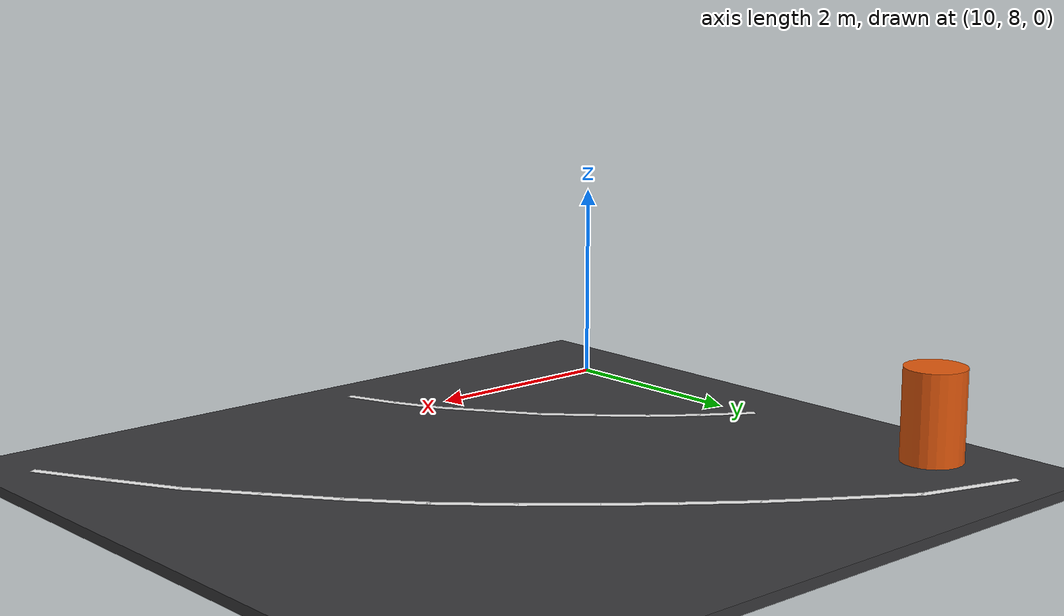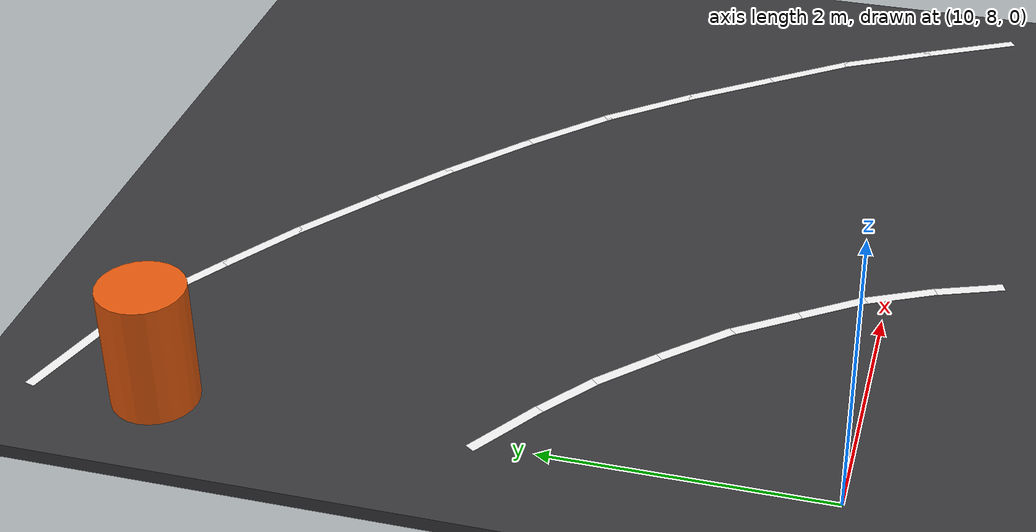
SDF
<sdf version="1.9">
 <world name="igvc_course">
  <model name="ground">
   <static>true</static>
   <pose>1.1853 1.2982 -0.05 0 0 0</pose>
   <link name="link">
    <collision name="collision">
     <geometry><box><size>39.54 33.62 0.1</size></box></geometry>
     <surface><friction><ode><mu>1.0</mu><mu2>1.0</mu2></ode></friction></surface>
    </collision>
    <visual name="visual">
     <geometry><box><size>39.54 33.62 0.1</size></box></geometry>
     <material><ambient>0.18 0.18 0.19 1</ambient><diffuse>0.22 0.22 0.23 1</diffuse></material>
    </visual>
   </link>
  </model>
  <model name="lane_left_46">
   <static>true</static>
   <pose>10.3671 13.3681 0.0025 0 0 -0.29174</pose>
   <link name="link">
    <visual name="visual">
     <geometry><box><size>1.0528 0.0762 0.0050</size></box></geometry>
     <material>
      <ambient>0.95 0.95 0.95 1</ambient>
      <diffuse>0.95 0.95 0.95 1</diffuse>
      <specular>0.1 0.1 0.1 1</specular>
      <emissive>0.55 0.55 0.55 1</emissive>
     </material>
    </visual>
   </link>
  </model>
  <model name="lane_left_47">
   <static>true</static>
   <pose>11.1969 13.0019 0.0025 0 0 -0.56959</pose>
   <link name="link">
    <visual name="visual">
     <geometry><box><size>0.8550 0.0762 0.0050</size></box></geometry>
     <material>
      <ambient>0.95 0.95 0.95 1</ambient>
      <diffuse>0.95 0.95 0.95 1</diffuse>
      <specular>0.1 0.1 0.1 1</specular>
      <emissive>0.55 0.55 0.55 1</emissive>
     </material>
    </visual>
   </link>
  </model>
  <model name="lane_left_48">
   <static>true</static>
   <pose>11.8137 12.5993 0.0025 0 0 -0.58913</pose>
   <link name="link">
    <visual name="visual">
     <geometry><box><size>0.6945 0.0762 0.0050</size></box></geometry>
     <material>
      <ambient>0.95 0.95 0.95 1</ambient>
      <diffuse>0.95 0.95 0.95 1</diffuse>
      <specular>0.1 0.1 0.1 1</specular>
      <emissive>0.55 0.55 0.55 1</emissive>
     </material>
    </visual>
   </link>
  </model>
  <model name="lane_left_49">
   <static>true</static>
   <pose>12.3634 12.2053 0.0025 0 0 -0.65287</pose>
   <link name="link">
    <visual name="visual">
     <geometry><box><size>0.7351 0.0762 0.0050</size></box></geometry>
     <material>
      <ambient>0.95 0.95 0.95 1</ambient>
      <diffuse>0.95 0.95 0.95 1</diffuse>
      <specular>0.1 0.1 0.1 1</specular>
      <emissive>0.55 0.55 0.55 1</emissive>
     </material>
    </visual>
   </link>
  </model>
  <model name="lane_left_50">
   <static>true</static>
   <pose>12.9036 11.7823 0.0025 0 0 -0.67625</pose>
   <link name="link">
    <visual name="visual">
     <geometry><box><size>0.7133 0.0762 0.0050</size></box></geometry>
     <material>
      <ambient>0.95 0.95 0.95 1</ambient>
      <diffuse>0.95 0.95 0.95 1</diffuse>
      <specular>0.1 0.1 0.1 1</specular>
      <emissive>0.55 0.55 0.55 1</emissive>
     </material>
    </visual>
   </link>
  </model>
  <model name="lane_left_51">
   <static>true</static>
   <pose>13.4496 11.3233 0.0025 0 0 -0.71932</pose>
   <link name="link">
    <visual name="visual">
     <geometry><box><size>0.7900 0.0762 0.0050</size></box></geometry>
     <material>
      <ambient>0.95 0.95 0.95 1</ambient>
      <diffuse>0.95 0.95 0.95 1</diffuse>
      <specular>0.1 0.1 0.1 1</specular>
      <emissive>0.55 0.55 0.55 1</emissive>
     </material>
    </visual>
   </link>
  </model>
  <model name="lane_left_52">
   <static>true</static>
   <pose>14.0043 10.8108 0.0025 0 0 -0.77221</pose>
   <link name="link">
    <visual name="visual">
     <geometry><box><size>0.7972 0.0762 0.0050</size></box></geometry>
     <material>
      <ambient>0.95 0.95 0.95 1</ambient>
      <diffuse>0.95 0.95 0.95 1</diffuse>
      <specular>0.1 0.1 0.1 1</specular>
      <emissive>0.55 0.55 0.55 1</emissive>
     </material>
    </visual>
   </link>
  </model>
  <model name="lane_left_53">
   <static>true</static>
   <pose>14.5223 10.2517 0.0025 0 0 -0.87440</pose>
   <link name="link">
    <visual name="visual">
     <geometry><box><size>0.8052 0.0762 0.0050</size></box></geometry>
     <material>
      <ambient>0.95 0.95 0.95 1</ambient>
      <diffuse>0.95 0.95 0.95 1</diffuse>
      <specular>0.1 0.1 0.1 1</specular>
      <emissive>0.55 0.55 0.55 1</emissive>
     </material>
    </visual>
   </link>
  </model>
  <model name="lane_left_54">
   <static>true</static>
   <pose>14.9909 9.6593 0.0025 0 0 -0.92940</pose>
   <link name="link">
    <visual name="visual">
     <geometry><box><size>0.7822 0.0762 0.0050</size></box></geometry>
     <material>
      <ambient>0.95 0.95 0.95 1</ambient>
      <diffuse>0.95 0.95 0.95 1</diffuse>
      <specular>0.1 0.1 0.1 1</specular>
      <emissive>0.55 0.55 0.55 1</emissive>
     </material>
    </visual>
   </link>
  </model>
  <model name="lane_left_55">
   <static>true</static>
   <pose>15.4342 9.0626 0.0025 0 0 -0.93430</pose>
   <link name="link">
    <visual name="visual">
     <geometry><box><size>0.7806 0.0762 0.0050</size></box></geometry>
     <material>
      <ambient>0.95 0.95 0.95 1</ambient>
      <diffuse>0.95 0.95 0.95 1</diffuse>
      <specular>0.1 0.1 0.1 1</specular>
      <emissive>0.55 0.55 0.55 1</emissive>
     </material>
    </visual>
   </link>
  </model>
  <model name="lane_left_56">
   <static>true</static>
   <pose>15.8338 8.4374 0.0025 0 0 -1.06964</pose>
   <link name="link">
    <visual name="visual">
     <geometry><box><size>0.7831 0.0762 0.0050</size></box></geometry>
     <material>
      <ambient>0.95 0.95 0.95 1</ambient>
      <diffuse>0.95 0.95 0.95 1</diffuse>
      <specular>0.1 0.1 0.1 1</specular>
      <emissive>0.55 0.55 0.55 1</emissive>
     </material>
    </visual>
   </link>
  </model>
  <model name="lane_left_57">
   <static>true</static>
   <pose>16.1950 7.7631 0.0025 0 0 -1.08808</pose>
   <link name="link">
    <visual name="visual">
     <geometry><box><size>0.8231 0.0762 0.0050</size></box></geometry>
     <material>
      <ambient>0.95 0.95 0.95 1</ambient>
      <diffuse>0.95 0.95 0.95 1</diffuse>
      <specular>0.1 0.1 0.1 1</specular>
      <emissive>0.55 0.55 0.55 1</emissive>
     </material>
    </visual>
   </link>
  </model>
  <model name="lane_right_48">
   <static>true</static>
   <pose>10.1996 10.2607 0.0025 0 0 -0.58669</pose>
   <link name="link">
    <visual name="visual">
     <geometry><box><size>0.6028 0.0762 0.0050</size></box></geometry>
     <material>
      <ambient>0.95 0.95 0.95 1</ambient>
      <diffuse>0.95 0.95 0.95 1</diffuse>
      <specular>0.1 0.1 0.1 1</specular>
      <emissive>0.55 0.55 0.55 1</emissive>
     </material>
    </visual>
   </link>
  </model>
  <model name="lane_right_49">
   <static>true</static>
   <pose>10.6377 9.9492 0.0025 0 0 -0.65282</pose>
   <link name="link">
    <visual name="visual">
     <geometry><box><size>0.5491 0.0762 0.0050</size></box></geometry>
     <material>
      <ambient>0.95 0.95 0.95 1</ambient>
      <diffuse>0.95 0.95 0.95 1</diffuse>
      <specular>0.1 0.1 0.1 1</specular>
      <emissive>0.55 0.55 0.55 1</emissive>
     </material>
    </visual>
   </link>
  </model>
  <model name="lane_right_50">
   <static>true</static>
   <pose>11.0289 9.6102 0.0025 0 0 -0.77347</pose>
   <link name="link">
    <visual name="visual">
     <geometry><box><size>0.5644 0.0762 0.0050</size></box></geometry>
     <material>
      <ambient>0.95 0.95 0.95 1</ambient>
      <diffuse>0.95 0.95 0.95 1</diffuse>
      <specular>0.1 0.1 0.1 1</specular>
      <emissive>0.55 0.55 0.55 1</emissive>
     </material>
    </visual>
   </link>
  </model>
  <model name="lane_right_51">
   <static>true</static>
   <pose>11.4141 9.2225 0.0025 0 0 -0.80256</pose>
   <link name="link">
    <visual name="visual">
     <geometry><box><size>0.6051 0.0762 0.0050</size></box></geometry>
     <material>
      <ambient>0.95 0.95 0.95 1</ambient>
      <diffuse>0.95 0.95 0.95 1</diffuse>
      <specular>0.1 0.1 0.1 1</specular>
      <emissive>0.55 0.55 0.55 1</emissive>
     </material>
    </visual>
   </link>
  </model>
  <model name="lane_right_52">
   <static>true</static>
   <pose>11.7626 8.8036 0.0025 0 0 -0.95707</pose>
   <link name="link">
    <visual name="visual">
     <geometry><box><size>0.5640 0.0762 0.0050</size></box></geometry>
     <material>
      <ambient>0.95 0.95 0.95 1</ambient>
      <diffuse>0.95 0.95 0.95 1</diffuse>
      <specular>0.1 0.1 0.1 1</specular>
      <emissive>0.55 0.55 0.55 1</emissive>
     </material>
    </visual>
   </link>
  </model>
  <model name="lane_right_53">
   <static>true</static>
   <pose>12.0631 8.3750 0.0025 0 0 -0.96181</pose>
   <link name="link">
    <visual name="visual">
     <geometry><box><size>0.5593 0.0762 0.0050</size></box></geometry>
     <material>
      <ambient>0.95 0.95 0.95 1</ambient>
      <diffuse>0.95 0.95 0.95 1</diffuse>
      <specular>0.1 0.1 0.1 1</specular>
      <emissive>0.55 0.55 0.55 1</emissive>
     </material>
    </visual>
   </link>
  </model>
  <model name="lane_right_54">
   <static>true</static>
   <pose>12.3282 7.9231 0.0025 0 0 -1.11727</pose>
   <link name="link">
    <visual name="visual">
     <geometry><box><size>0.5678 0.0762 0.0050</size></box></geometry>
     <material>
      <ambient>0.95 0.95 0.95 1</ambient>
      <diffuse>0.95 0.95 0.95 1</diffuse>
      <specular>0.1 0.1 0.1 1</specular>
      <emissive>0.55 0.55 0.55 1</emissive>
     </material>
    </visual>
   </link>
  </model>
  <model name="lane_right_55">
   <static>true</static>
   <pose>12.5340 7.4474 0.0025 0 0 -1.20961</pose>
   <link name="link">
    <visual name="visual">
     <geometry><box><size>0.5462 0.0762 0.0050</size></box></geometry>
     <material>
      <ambient>0.95 0.95 0.95 1</ambient>
      <diffuse>0.95 0.95 0.95 1</diffuse>
      <specular>0.1 0.1 0.1 1</specular>
      <emissive>0.55 0.55 0.55 1</emissive>
     </material>
    </visual>
   </link>
  </model>
  <model name="barrel_5">
   <static>true</static>
   <pose>9.9552 12.6300 0.4500 0 0 0</pose>
   <link name="link">
    <collision name="collision">
     <geometry><cylinder><radius>0.3030</radius><length>0.9</length></cylinder></geometry>
    </collision>
    <visual name="visual">
     <geometry><cylinder><radius>0.3030</radius><length>0.9</length></cylinder></geometry>
     <material><ambient>0.9 0.35 0.05 1</ambient><diffuse>0.9 0.35 0.05 1</diffuse></material>
    </visual>
   </link>
  </model>
 </world>
</sdf>
